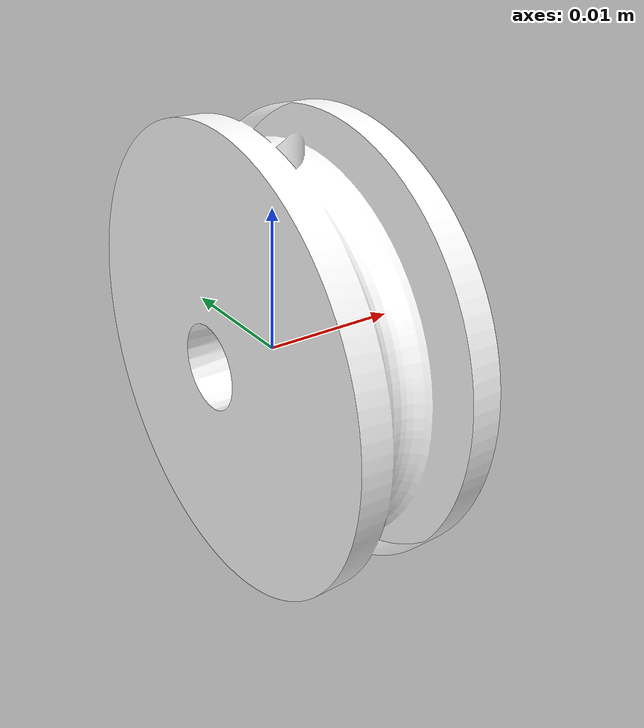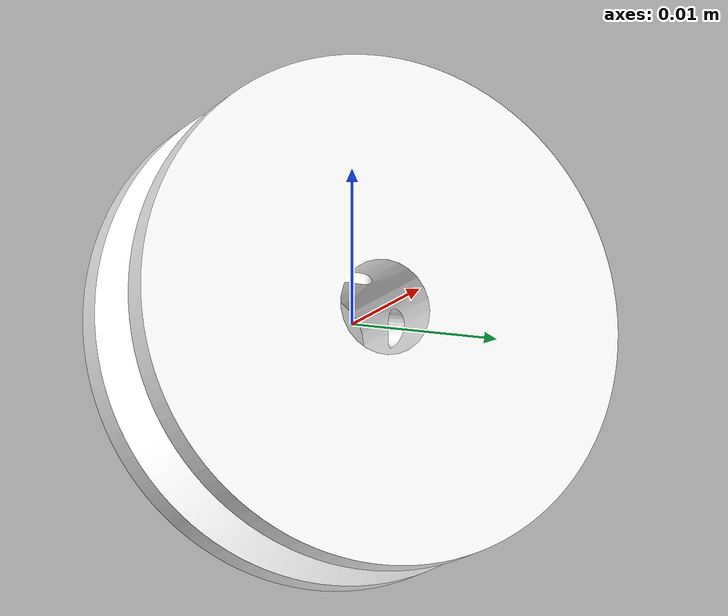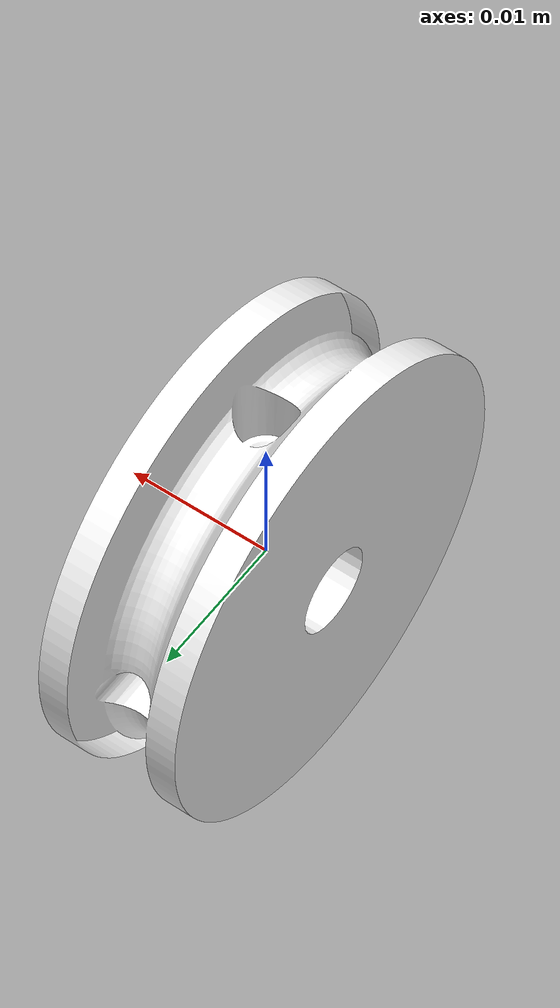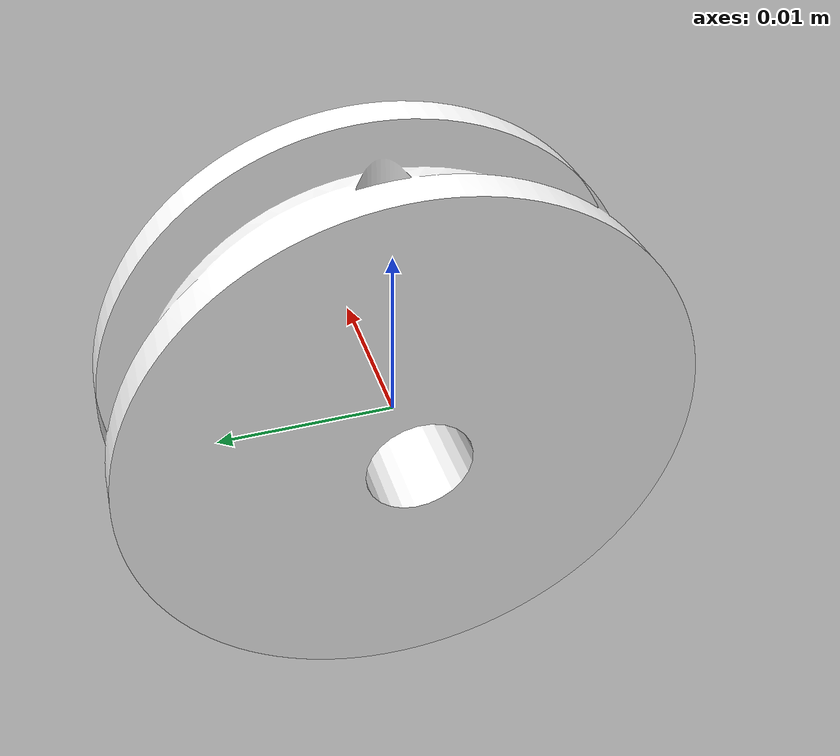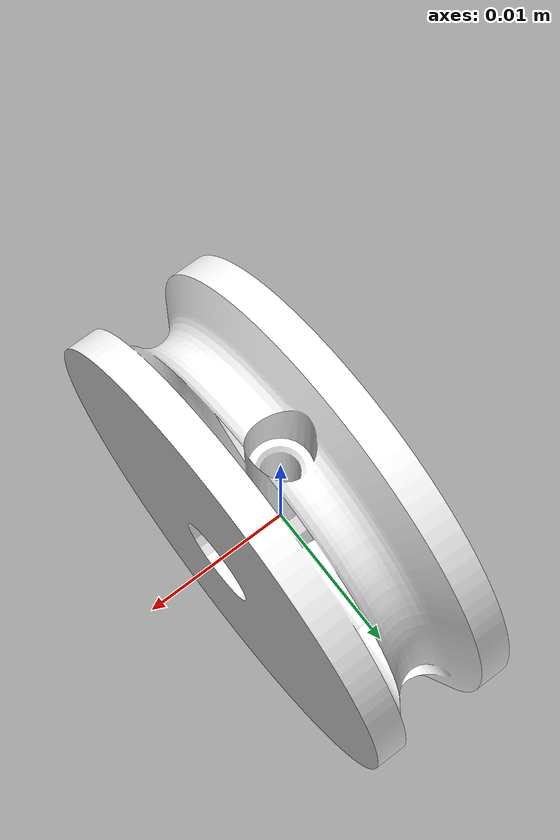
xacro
<robot xmlns:xacro="http://www.ros.org/wiki/xacro" name="assy_part_13">
  <xacro:include filename="$(find o2as_parts_description)/urdf/generated/13_MBGA30-2_macro.urdf.xacro"/>
  <xacro:assy_part_13 prefix="" parent="world" spawn_attached="false">
    <origin rpy="0 0 0" xyz="0 0 0"/>
  </xacro:assy_part_13>
</robot>

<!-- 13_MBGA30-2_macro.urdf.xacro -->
<robot xmlns:xacro="http://www.ros.org/wiki/xacro" name="assy_part_13">
  <xacro:macro name="assy_part_13" params="prefix parent spawn_attached *origin">
    <link name="${prefix}assy_part_13">
      <visual>
        <origin rpy="1.5707 0 0" xyz="0 0 0"/>
        <geometry>
          <mesh filename="package://o2as_parts_description/meshes/13_MBGA30-2.dae" scale="0.001 0.001 0.001"/>
        </geometry>
        <material name="white">
          <color rgba="1 1 1 1"/>
        </material>
      </visual>
      <collision>
        <origin rpy="1.5707 0 0" xyz="0 0 0"/>
        <geometry>
          <mesh filename="package://o2as_parts_description/meshes/13_MBGA30-2.vhacd.dae" scale="0.001 0.001 0.001"/>
        </geometry>
      </collision>
    </link>

    <xacro:if value="${spawn_attached}">
      <joint name="${prefix}assy_part_13_joint" type="fixed">
        <parent link="${parent}"/>
        <child link="${prefix}assy_part_13"/>
        <xacro:insert_block name="origin"/>
      </joint>
    </xacro:if>

  <!-- Extra frames for assembly and motion planning, if any -->
    <joint name="${prefix}assy_part_13_center_joint" type="fixed">
      <parent link="${prefix}assy_part_13"/>
      <child link="${prefix}assy_part_13_center"/>
      <origin rpy="${0} ${0} ${0}" xyz="${0} ${0} ${0}"/>
    </joint>
    <link name="${prefix}assy_part_13_center"/>

    <joint name="${prefix}assy_part_13_screw_head_joint" type="fixed">
      <parent link="${prefix}assy_part_13"/>
      <child link="${prefix}assy_part_13_screw_head"/>
      <origin rpy="${0} ${pi/2} ${0}" xyz="${0} ${0} ${0.016}"/>
    </joint>
    <link name="${prefix}assy_part_13_screw_head"/>

  </xacro:macro>
</robot>
